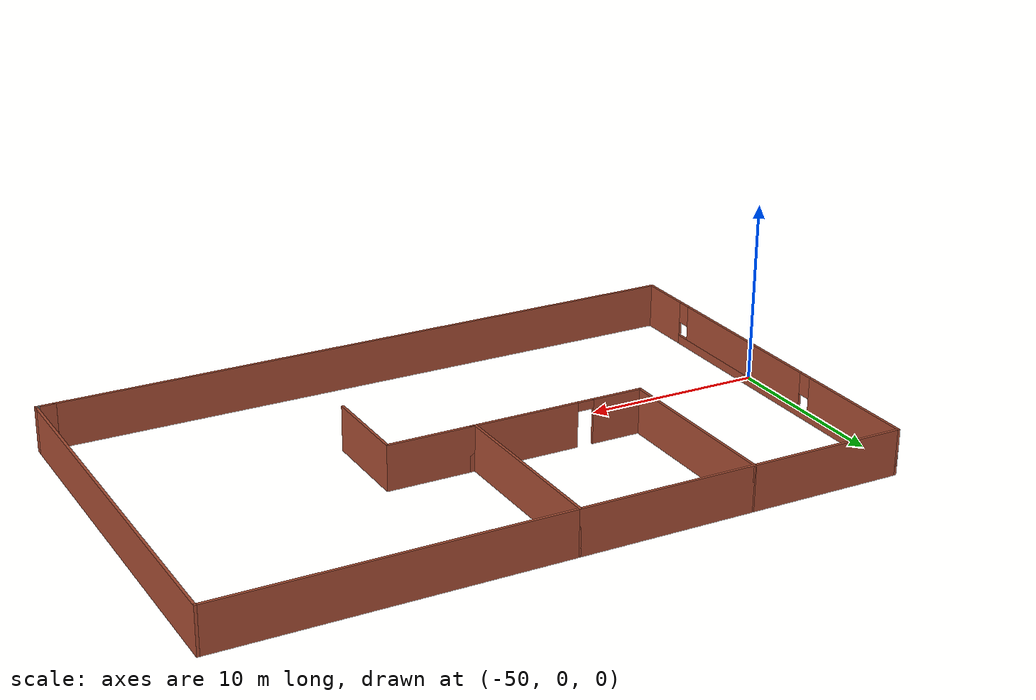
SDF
<?xml version='1.0'?>
<sdf version='1.7'>
  <model name='mybuilding'>
    <pose>-24.7414 2.05327 0 0 -0 0</pose>
    <link name='Wall_0'>
      <collision name='Wall_0_Collision'>
        <geometry>
          <box>
            <size>36 0.15 2.5</size>
          </box>
        </geometry>
        <pose>0 0 1.25 0 -0 0</pose>
      </collision>
      <visual name='Wall_0_Visual'>
        <pose>0 0 1.25 0 -0 0</pose>
        <geometry>
          <box>
            <size>36 0.15 2.5</size>
          </box>
        </geometry>
        <material>
          <script>
            <uri>file://media/materials/scripts/gazebo.material</uri>
            <name>Gazebo/Bricks</name>
          </script>
          <ambient>1 1 1 1</ambient>
        </material>
        <meta>
          <layer>0</layer>
        </meta>
      </visual>
      <pose>-6.74141 -11.175 0 0 -0 3.14159</pose>
    </link>
    <link name='Wall_1'>
      <pose>-24.6664 -0 0 0 -0 1.5708</pose>
      <visual name='Wall_1_Visual_0'>
        <pose>-9.67564 0 1.25 0 -0 0</pose>
        <geometry>
          <box>
            <size>3.14872 0.15 2.5</size>
          </box>
        </geometry>
        <material>
          <script>
            <uri>file://media/materials/scripts/gazebo.material</uri>
            <name>Gazebo/Bricks</name>
          </script>
          <ambient>1 1 1 1</ambient>
        </material>
        <meta>
          <layer>0</layer>
        </meta>
      </visual>
      <collision name='Wall_1_Collision_0'>
        <geometry>
          <box>
            <size>3.14872 0.15 2.5</size>
          </box>
        </geometry>
        <pose>-9.67564 0 1.25 0 -0 0</pose>
      </collision>
      <visual name='Wall_1_Visual_1'>
        <pose>1.57436 0 0.25 0 -0 0</pose>
        <geometry>
          <box>
            <size>19.3513 0.15 0.5</size>
          </box>
        </geometry>
        <material>
          <script>
            <uri>file://media/materials/scripts/gazebo.material</uri>
            <name>Gazebo/Bricks</name>
          </script>
          <ambient>1 1 1 1</ambient>
        </material>
        <meta>
          <layer>0</layer>
        </meta>
      </visual>
      <collision name='Wall_1_Collision_1'>
        <geometry>
          <box>
            <size>19.3513 0.15 0.5</size>
          </box>
        </geometry>
        <pose>1.57436 0 0.25 0 -0 0</pose>
      </collision>
      <visual name='Wall_1_Visual_2'>
        <pose>-2.01773 0 1.5 0 -0 0</pose>
        <geometry>
          <box>
            <size>10.5671 0.15 2</size>
          </box>
        </geometry>
        <material>
          <script>
            <uri>file://media/materials/scripts/gazebo.material</uri>
            <name>Gazebo/Bricks</name>
          </script>
          <ambient>1 1 1 1</ambient>
        </material>
        <meta>
          <layer>0</layer>
        </meta>
      </visual>
      <collision name='Wall_1_Collision_2'>
        <geometry>
          <box>
            <size>10.5671 0.15 2</size>
          </box>
        </geometry>
        <pose>-2.01773 0 1.5 0 -0 0</pose>
      </collision>
      <visual name='Wall_1_Visual_3'>
        <pose>7.65791 0 1.5 0 -0 0</pose>
        <geometry>
          <box>
            <size>7.18418 0.15 2</size>
          </box>
        </geometry>
        <material>
          <script>
            <uri>file://media/materials/scripts/gazebo.material</uri>
            <name>Gazebo/Bricks</name>
          </script>
          <ambient>1 1 1 1</ambient>
        </material>
        <meta>
          <layer>0</layer>
        </meta>
      </visual>
      <collision name='Wall_1_Collision_3'>
        <geometry>
          <box>
            <size>7.18418 0.15 2</size>
          </box>
        </geometry>
        <pose>7.65791 0 1.5 0 -0 0</pose>
      </collision>
      <visual name='Wall_1_Visual_4'>
        <pose>-7.70128 0 1.9 0 -0 0</pose>
        <geometry>
          <box>
            <size>0.8 0.15 1.2</size>
          </box>
        </geometry>
        <material>
          <script>
            <uri>file://media/materials/scripts/gazebo.material</uri>
            <name>Gazebo/Bricks</name>
          </script>
          <ambient>1 1 1 1</ambient>
        </material>
        <meta>
          <layer>0</layer>
        </meta>
      </visual>
      <collision name='Wall_1_Collision_4'>
        <geometry>
          <box>
            <size>0.8 0.15 1.2</size>
          </box>
        </geometry>
        <pose>-7.70128 0 1.9 0 -0 0</pose>
      </collision>
      <visual name='Wall_1_Visual_5'>
        <pose>3.66582 0 1.9 0 -0 0</pose>
        <geometry>
          <box>
            <size>0.8 0.15 1.2</size>
          </box>
        </geometry>
        <material>
          <script>
            <uri>file://media/materials/scripts/gazebo.material</uri>
            <name>Gazebo/Bricks</name>
          </script>
          <ambient>1 1 1 1</ambient>
        </material>
        <meta>
          <layer>0</layer>
        </meta>
      </visual>
      <collision name='Wall_1_Collision_5'>
        <geometry>
          <box>
            <size>0.8 0.15 1.2</size>
          </box>
        </geometry>
        <pose>3.66582 0 1.9 0 -0 0</pose>
      </collision>
    </link>
    <link name='Wall_11'>
      <collision name='Wall_11_Collision'>
        <geometry>
          <box>
            <size>18.75 0.15 2.5</size>
          </box>
        </geometry>
        <pose>0 0 1.25 0 -0 0</pose>
      </collision>
      <visual name='Wall_11_Visual'>
        <pose>0 0 1.25 0 -0 0</pose>
        <geometry>
          <box>
            <size>18.75 0.15 2.5</size>
          </box>
        </geometry>
        <material>
          <script>
            <uri>file://media/materials/scripts/gazebo.material</uri>
            <name>Gazebo/Bricks</name>
          </script>
          <ambient>1 1 1 1</ambient>
        </material>
        <meta>
          <layer>0</layer>
        </meta>
      </visual>
      <pose>2.83359 11.175 0 0 -0 0</pose>
    </link>
    <link name='Wall_12'>
      <collision name='Wall_12_Collision'>
        <geometry>
          <box>
            <size>22.25 0.15 2.5</size>
          </box>
        </geometry>
        <pose>0 0 1.25 0 -0 0</pose>
      </collision>
      <visual name='Wall_12_Visual'>
        <pose>0 0 1.25 0 -0 0</pose>
        <geometry>
          <box>
            <size>22.25 0.15 2.5</size>
          </box>
        </geometry>
        <material>
          <script>
            <uri>file://media/materials/scripts/gazebo.material</uri>
            <name>Gazebo/Bricks</name>
          </script>
          <ambient>1 1 1 1</ambient>
        </material>
        <meta>
          <layer>0</layer>
        </meta>
      </visual>
      <pose>12.1336 0.125 0 0 -0 -1.5708</pose>
    </link>
    <link name='Wall_14'>
      <collision name='Wall_14_Collision'>
        <geometry>
          <box>
            <size>1 0.15 2.5</size>
          </box>
        </geometry>
        <pose>0 0 1.25 0 -0 0</pose>
      </collision>
      <visual name='Wall_14_Visual'>
        <pose>0 0 1.25 0 -0 0</pose>
        <geometry>
          <box>
            <size>1 0.15 2.5</size>
          </box>
        </geometry>
        <material>
          <script>
            <uri>file://media/materials/scripts/gazebo.material</uri>
            <name>Gazebo/Bricks</name>
          </script>
          <ambient>1 1 1 1</ambient>
        </material>
        <meta>
          <layer>0</layer>
        </meta>
      </visual>
      <pose>11.6086 -11.175 0 0 -0 0</pose>
    </link>
    <link name='Wall_15'>
      <collision name='Wall_15_Collision'>
        <geometry>
          <box>
            <size>0.25 0.15 2.5</size>
          </box>
        </geometry>
        <pose>0 0 1.25 0 -0 0</pose>
      </collision>
      <visual name='Wall_15_Visual'>
        <pose>0 0 1.25 0 -0 0</pose>
        <geometry>
          <box>
            <size>0.25 0.15 2.5</size>
          </box>
        </geometry>
        <material>
          <script>
            <uri>file://media/materials/scripts/gazebo.material</uri>
            <name>Gazebo/Grey</name>
          </script>
          <ambient>1 1 1 1</ambient>
        </material>
        <meta>
          <layer>0</layer>
        </meta>
      </visual>
      <pose>12.0836 -11.175 0 0 -0 0</pose>
    </link>
    <link name='Wall_16'>
      <collision name='Wall_16_Collision'>
        <geometry>
          <box>
            <size>0.4 0.15 2.5</size>
          </box>
        </geometry>
        <pose>0 0 1.25 0 -0 0</pose>
      </collision>
      <visual name='Wall_16_Visual'>
        <pose>0 0 1.25 0 -0 0</pose>
        <geometry>
          <box>
            <size>0.4 0.15 2.5</size>
          </box>
        </geometry>
        <material>
          <script>
            <uri>file://media/materials/scripts/gazebo.material</uri>
            <name>Gazebo/Bricks</name>
          </script>
          <ambient>1 1 1 1</ambient>
        </material>
        <meta>
          <layer>0</layer>
        </meta>
      </visual>
      <pose>12.1336 -11.05 0 0 -0 1.5708</pose>
    </link>
    <link name='Wall_2'>
      <collision name='Wall_2_Collision'>
        <geometry>
          <box>
            <size>8.75 0.15 2.5</size>
          </box>
        </geometry>
        <pose>0 0 1.25 0 -0 0</pose>
      </collision>
      <visual name='Wall_2_Visual'>
        <pose>0 0 1.25 0 -0 0</pose>
        <geometry>
          <box>
            <size>8.75 0.15 2.5</size>
          </box>
        </geometry>
        <material>
          <script>
            <uri>file://media/materials/scripts/gazebo.material</uri>
            <name>Gazebo/Bricks</name>
          </script>
          <ambient>1 1 1 1</ambient>
        </material>
        <meta>
          <layer>0</layer>
        </meta>
      </visual>
      <pose>-20.3664 11.175 0 0 -0 0</pose>
    </link>
    <link name='Wall_3'>
      <collision name='Wall_3_Collision'>
        <geometry>
          <box>
            <size>10.25 0.15 2.5</size>
          </box>
        </geometry>
        <pose>0 0 1.25 0 -0 0</pose>
      </collision>
      <visual name='Wall_3_Visual'>
        <pose>0 0 1.25 0 -0 0</pose>
        <geometry>
          <box>
            <size>10.25 0.15 2.5</size>
          </box>
        </geometry>
        <material>
          <script>
            <uri>file://media/materials/scripts/gazebo.material</uri>
            <name>Gazebo/Bricks</name>
          </script>
          <ambient>1 1 1 1</ambient>
        </material>
        <meta>
          <layer>0</layer>
        </meta>
      </visual>
      <pose>-16.0664 6.125 0 0 -0 -1.5708</pose>
    </link>
    <link name='Wall_4'>
      <pose>-11.1414 1.075 0 0 -0 0</pose>
      <visual name='Wall_4_Visual_0'>
        <pose>-3.54858 0 1.25 0 -0 0</pose>
        <geometry>
          <box>
            <size>2.90284 0.15 2.5</size>
          </box>
        </geometry>
        <material>
          <script>
            <uri>file://media/materials/scripts/gazebo.material</uri>
            <name>Gazebo/Bricks</name>
          </script>
          <ambient>1 1 1 1</ambient>
        </material>
        <meta>
          <layer>0</layer>
        </meta>
      </visual>
      <collision name='Wall_4_Collision_0'>
        <geometry>
          <box>
            <size>2.90284 0.15 2.5</size>
          </box>
        </geometry>
        <pose>-3.54858 0 1.25 0 -0 0</pose>
      </collision>
      <visual name='Wall_4_Visual_1'>
        <pose>1.90142 0 1.25 0 -0 0</pose>
        <geometry>
          <box>
            <size>6.19716 0.15 2.5</size>
          </box>
        </geometry>
        <material>
          <script>
            <uri>file://media/materials/scripts/gazebo.material</uri>
            <name>Gazebo/Bricks</name>
          </script>
          <ambient>1 1 1 1</ambient>
        </material>
        <meta>
          <layer>0</layer>
        </meta>
      </visual>
      <collision name='Wall_4_Collision_1'>
        <geometry>
          <box>
            <size>6.19716 0.15 2.5</size>
          </box>
        </geometry>
        <pose>1.90142 0 1.25 0 -0 0</pose>
      </collision>
      <visual name='Wall_4_Visual_2'>
        <pose>-1.64716 0 2.25 0 -0 0</pose>
        <geometry>
          <box>
            <size>0.9 0.15 0.5</size>
          </box>
        </geometry>
        <material>
          <script>
            <uri>file://media/materials/scripts/gazebo.material</uri>
            <name>Gazebo/Bricks</name>
          </script>
          <ambient>1 1 1 1</ambient>
        </material>
        <meta>
          <layer>0</layer>
        </meta>
      </visual>
      <collision name='Wall_4_Collision_2'>
        <geometry>
          <box>
            <size>0.9 0.15 0.5</size>
          </box>
        </geometry>
        <pose>-1.64716 0 2.25 0 -0 0</pose>
      </collision>
    </link>
    <link name='Wall_6'>
      <collision name='Wall_6_Collision'>
        <geometry>
          <box>
            <size>9.75 0.15 2.5</size>
          </box>
        </geometry>
        <pose>0 0 1.25 0 -0 0</pose>
      </collision>
      <visual name='Wall_6_Visual'>
        <pose>0 0 1.25 0 -0 0</pose>
        <geometry>
          <box>
            <size>9.75 0.15 2.5</size>
          </box>
        </geometry>
        <material>
          <script>
            <uri>file://media/materials/scripts/gazebo.material</uri>
            <name>Gazebo/Bricks</name>
          </script>
          <ambient>1 1 1 1</ambient>
        </material>
        <meta>
          <layer>0</layer>
        </meta>
      </visual>
      <pose>-11.2664 11.175 0 0 -0 0</pose>
    </link>
    <link name='Wall_7'>
      <collision name='Wall_7_Collision'>
        <geometry>
          <box>
            <size>10.25 0.15 2.5</size>
          </box>
        </geometry>
        <pose>0 0 1.25 0 -0 0</pose>
      </collision>
      <visual name='Wall_7_Visual'>
        <pose>0 0 1.25 0 -0 0</pose>
        <geometry>
          <box>
            <size>10.25 0.15 2.5</size>
          </box>
        </geometry>
        <material>
          <script>
            <uri>file://media/materials/scripts/gazebo.material</uri>
            <name>Gazebo/Bricks</name>
          </script>
          <ambient>1 1 1 1</ambient>
        </material>
        <meta>
          <layer>0</layer>
        </meta>
      </visual>
      <pose>-6.46641 6.125 0 0 -0 -1.5708</pose>
    </link>
    <link name='Wall_8'>
      <collision name='Wall_8_Collision'>
        <geometry>
          <box>
            <size>5 0.15 2.5</size>
          </box>
        </geometry>
        <pose>0 0 1.25 0 -0 0</pose>
      </collision>
      <visual name='Wall_8_Visual'>
        <pose>0 0 1.25 0 -0 0</pose>
        <geometry>
          <box>
            <size>5 0.15 2.5</size>
          </box>
        </geometry>
        <material>
          <script>
            <uri>file://media/materials/scripts/gazebo.material</uri>
            <name>Gazebo/Bricks</name>
          </script>
          <ambient>1 1 1 1</ambient>
        </material>
        <meta>
          <layer>0</layer>
        </meta>
      </visual>
      <pose>-4.04141 1.075 0 0 -0 0</pose>
    </link>
    <link name='Wall_9'>
      <collision name='Wall_9_Collision'>
        <geometry>
          <box>
            <size>5.25 0.15 2.5</size>
          </box>
        </geometry>
        <pose>0 0 1.25 0 -0 0</pose>
      </collision>
      <visual name='Wall_9_Visual'>
        <pose>0 0 1.25 0 -0 0</pose>
        <geometry>
          <box>
            <size>5.25 0.15 2.5</size>
          </box>
        </geometry>
        <material>
          <script>
            <uri>file://media/materials/scripts/gazebo.material</uri>
            <name>Gazebo/Bricks</name>
          </script>
          <ambient>1 1 1 1</ambient>
        </material>
        <meta>
          <layer>0</layer>
        </meta>
      </visual>
      <pose>-1.61641 -1.475 0 0 -0 -1.5708</pose>
    </link>
    <static>1</static>
  </model>
</sdf>
